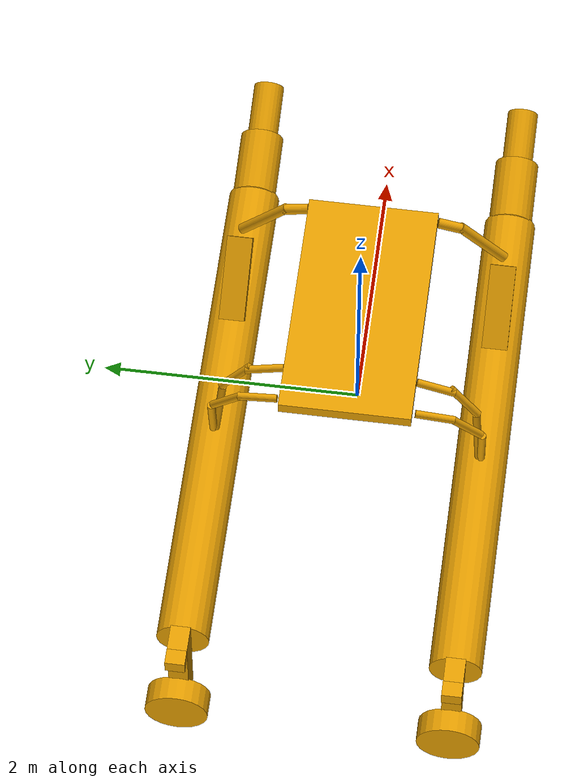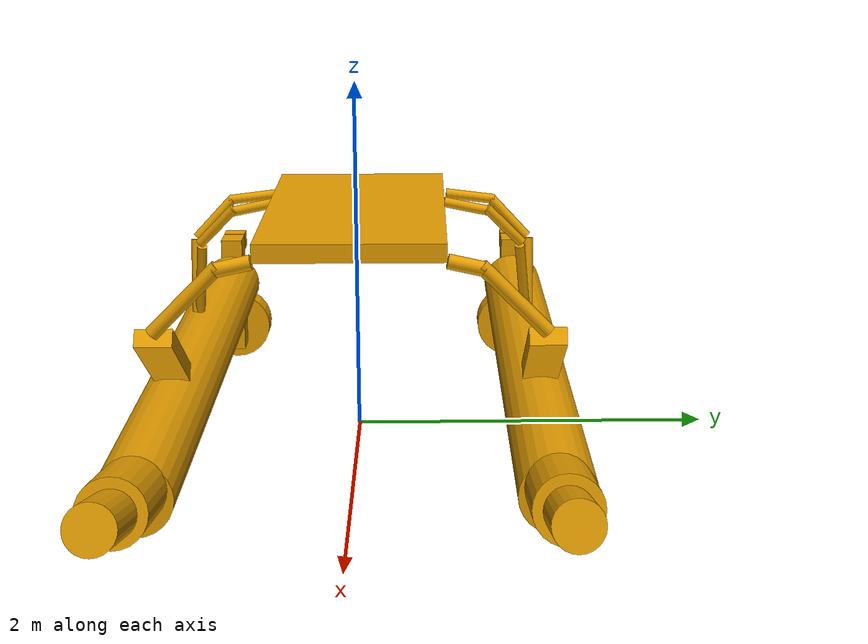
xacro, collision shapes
<?xml version="1.0"?>
<robot xmlns:xacro="http://ros.org/wiki/xacro"
       name="WAM-V">
  <!-- Defines the base vehicle -->
  <xacro:include filename="$(find wamv_description)/urdf/wamv_base.xacro" />

  <!-- Attach hydrodynamics plugin -->
  <xacro:include filename="$(find robotx_gazebo)/urdf/wamv_gazebo_dynamics_plugin.xacro" />
  <xacro:usv_dynamics_gazebo name="wamv_dynamics_plugin"/>

  <!-- Attach wind plugin -->
  <xacro:include filename="$(find robotx_gazebo)/urdf/wamv_gazebo_wind_plugin.xacro" />
  <xacro:usv_wind_gazebo name="wamv_wind_plugin"/>

  <!-- Attach thrust plugin -->
  <xacro:include filename="$(find robotx_gazebo)/urdf/wamv_gazebo_thrust_plugin.xacro" />
  <xacro:usv_thrust_gazebo name="wamv_thrust_plugin"/>

    <!-- Attach Camera plugin -->
  <xacro:include filename="$(find wamv_description)/urdf/sensor_camera.xacro" />
  <xacro:wamv_gazebo_camera name="wamv_camera1"/>
  <!-- Attach IMU plugin -->
  <xacro:include filename="$(find wamv_description)/urdf/sensor_imu.xacro" />
  <xacro:wamv_gazebo_imu name="wamv_imu"/>
  <!-- Attach GPS plugin -->
  <xacro:include filename="$(find wamv_description)/urdf/sensor_gps.xacro" />
  <xacro:wamv_gazebo_gps name="wamv_gps"/>
  <!-- Attach P3D plugin -->
  <xacro:include filename="$(find wamv_description)/urdf/sensor_p3d.xacro" />
  <xacro:wamv_gazebo_p3d name="wamv_p3d"/>
  <!-- Attach P3D plugin -->
  <xacro:include filename="$(find wamv_description)/urdf/sensor_velodyne.xacro" />
  <xacro:wamv_gazebo_p3d name="wamv_velodyne"/>

</robot>

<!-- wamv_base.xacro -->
<robot
  xmlns:xacro="http://ros.org/wiki/xacro" name="wam-v">
  <xacro:include filename="properties.urdf.xacro"/>
  <link name="base_link">
    <wind>true</wind>
    <visual>
      <geometry>
        <mesh filename="package://wamv_description/mesh/WAM-V-Base.dae"/>
      </geometry>
    </visual>
    <!-- Left float -->
    <collision name="left_float">
      <origin xyz="-0.4 1.03 0.2" rpy="0 1.57 0" />
      <geometry>
        <cylinder length="4" radius="0.2" />
      </geometry>
    </collision>
    <collision name="left_mid_float">
      <origin xyz="1.85 1.03 0.3" rpy="0 1.38 0" />
      <geometry>
        <cylinder length="0.5" radius="0.17" />
      </geometry>
    </collision>
    <collision name="left_front_float">
      <origin xyz="2.3 1.03 0.4" rpy="0 1.3 0" />
      <geometry>
        <cylinder length="0.45" radius="0.12" />
      </geometry>
    </collision>
    <!-- Left engine upper -->
    <collision name="left_engine_vertical_axis">
      <origin xyz="-2.55 1.03 0.09" rpy="0 0 0" />
      <geometry>
        <box size="0.2 0.15 0.83" />
      </geometry>
    </collision>
    <collision name="left_engine_rear_end">
      <origin xyz="-2.71 1.03 0.45" rpy="0 0 0" />
      <geometry>
        <box size="0.12 0.15 0.12" />
      </geometry>
    </collision>
    <collision name="left_propeller">
      <origin xyz="-2.73 1.03 -0.2" rpy="0 1.57 0" />
      <geometry>
        <cylinder length="0.18" radius="0.24" />
      </geometry>
    </collision>
    <!-- Right float -->
    <collision name="left_float">
      <origin xyz="-0.4 -1.03 0.2" rpy="0 1.57 0" />
      <geometry>
        <cylinder length="4" radius="0.2" />
      </geometry>
    </collision>
    <collision name="left_mid_float">
      <origin xyz="1.85 -1.03 0.3" rpy="0 1.38 0" />
      <geometry>
        <cylinder length="0.5" radius="0.17" />
      </geometry>
    </collision>
    <collision name="left_front_float">
      <origin xyz="2.3 -1.03 0.4" rpy="0 1.3 0" />
      <geometry>
        <cylinder length="0.45" radius="0.12" />
      </geometry>
    </collision>
    <!-- Right engine upper -->
    <collision name="left_engine_vertical_axis">
      <origin xyz="-2.55 -1.03 0.09" rpy="0 0 0" />
      <geometry>
        <box size="0.2 0.15 0.83" />
      </geometry>
    </collision>
    <collision name="left_engine_rear_end">
      <origin xyz="-2.71 -1.03 0.45" rpy="0 0 0" />
      <geometry>
        <box size="0.12 0.15 0.12" />
      </geometry>
    </collision>
    <collision name="left_propeller">
      <origin xyz="-2.73 -1.03 -0.2" rpy="0 1.57 0" />
      <geometry>
        <cylinder length="0.18" radius="0.24" />
      </geometry>
    </collision>
    <!-- Base -->
    <collision name="top_base">
      <origin xyz="0 -0 1.25" rpy="0 0 0" />
      <geometry>
        <box size="1.85 1 0.1" />
      </geometry>
    </collision>
    <!-- Front left beam -->
    <collision name="front_left_beam_lower">
      <origin xyz="0.9 0.85 1" rpy="0.78 0 0" />
      <geometry>
        <cylinder length="0.5" radius="0.04" />
      </geometry>
    </collision>
    <collision name="front_left_beam_upper">
      <origin xyz="0.9 0.6 1.18" rpy="1.35 0 0" />
      <geometry>
        <cylinder length="0.2" radius="0.04" />
      </geometry>
    </collision>
    <!-- Front right beam -->
    <collision name="front_right_beam_lower">
      <origin xyz="0.9 -0.85 1" rpy="-0.78 0 0" />
      <geometry>
        <cylinder length="0.5" radius="0.04" />
      </geometry>
    </collision>
    <collision name="front_right_beam_upper">
      <origin xyz="0.9 -0.6 1.18" rpy="-1.35 0 0" />
      <geometry>
        <cylinder length="0.2" radius="0.04" />
      </geometry>
    </collision>
    <!-- Mid left beam -->
    <collision name="mid_left_beam_lower">
      <origin xyz="-0.65 0.99 0.7" rpy="0.1 0.25 0" />
      <geometry>
        <cylinder length="0.45" radius="0.03" />
      </geometry>
    </collision>
    <collision name="mid_left_beam_medium">
      <origin xyz="-0.57 0.87 1.05" rpy="0.75 0.25 0" />
      <geometry>
        <cylinder length="0.32" radius="0.03" />
      </geometry>
    </collision>
    <collision name="mid_left_beam_upper">
      <origin xyz="-0.55 0.65 1.17" rpy="1.35 0.25 0" />
      <geometry>
        <cylinder length="0.3" radius="0.03" />
      </geometry>
    </collision>
    <!-- Mid right beam -->
    <collision name="mid_right_beam_lower">
      <origin xyz="-0.65 -0.99 0.7" rpy="-0.1 0.25 0" />
      <geometry>
        <cylinder length="0.45" radius="0.03" />
      </geometry>
    </collision>
    <collision name="mid_right_beam_medium">
      <origin xyz="-0.57 -0.87 1.05" rpy="-0.75 0.25 0" />
      <geometry>
        <cylinder length="0.32" radius="0.03" />
      </geometry>
    </collision>
    <collision name="mid_right_beam_upper">
      <origin xyz="-0.55 -0.65 1.17" rpy="-1.35 0.25 0" />
      <geometry>
        <cylinder length="0.3" radius="0.03" />
      </geometry>
    </collision>
    <!-- Rear left beam -->
    <collision name="rear_left_beam_lower">
      <origin xyz="-0.74 1.03 0.7" rpy="0 -0.15 0" />
      <geometry>
        <cylinder length="0.45" radius="0.03" />
      </geometry>
    </collision>
    <collision name="rear_left_beam_medium">
      <origin xyz="-0.79 0.91 1.05" rpy="0.75 -0.15 0" />
      <geometry>
        <cylinder length="0.32" radius="0.03" />
      </geometry>
    </collision>
    <collision name="rear_left_beam_upper">
      <origin xyz="-0.81 0.67 1.18" rpy="1.45 -0.15 0" />
      <geometry>
        <cylinder length="0.3" radius="0.03" />
      </geometry>
    </collision>
    <!-- Rear right beam -->
    <collision name="rear_right_beam_lower">
      <origin xyz="-0.74 -1.03 0.7" rpy="0 -0.15 0" />
      <geometry>
        <cylinder length="0.45" radius="0.03" />
      </geometry>
    </collision>
    <collision name="rear_right_beam_medium">
      <origin xyz="-0.79 -0.91 1.05" rpy="-0.75 -0.15 0" />
      <geometry>
        <cylinder length="0.32" radius="0.03" />
      </geometry>
    </collision>
    <collision name="rear_right_beam_upper">
      <origin xyz="-0.81 -0.67 1.18" rpy="-1.45 -0.15 0" />
      <geometry>
        <cylinder length="0.3" radius="0.03" />
      </geometry>
    </collision>
    <!-- Left joint -->
    <collision name="left_joint">
      <origin xyz="0.58 1.03 0.6" rpy="0 -0.6 0" />
      <geometry>
        <box size="0.65 0.2 0.1" />
      </geometry>
    </collision>
    <!-- Right joint -->
    <collision name="right_joint">
      <origin xyz="0.58 -1.03 0.6" rpy="0 -0.6 0" />
      <geometry>
        <box size="0.65 0.2 0.1" />
      </geometry>
    </collision>
    <inertial>
      <mass value="180.0"/>
      <!-- From von Ellenrieder, consistent with WAM-V specs-->
      <inertia ixx="120.0" ixy="0.0" ixz="0.0" iyy="393" iyz="0.0" izz="446.0"/>
    </inertial>
  </link>
  <joint name="base_link_joint" type="fixed">
    <origin xyz="0 0 0"/>
    <parent link="base_footprint"/>
    <child link="base_link"/>
  </joint>
  <link name="base_footprint"/>
  <link name="front_camera_link"/>
  <joint name="front_camera_joint" type="fixed">
    <origin xyz="0.8 0 1.5"/>
    <parent link="base_link"/>
    <child link="front_camera_link"/>
  </joint>
  <link name="left_camera_link"/>
  <joint name="left_camera_joint" type="fixed">
    <origin xyz="0 0.5 0" rpy="0 0 ${pi/2}"/>
    <parent link="base_link"/>
    <child link="left_camera_link"/>
  </joint>
  <link name="right_camera_link"/>
  <joint name="right_camera_joint" type="fixed">
    <origin xyz="0 -0.5 0" rpy="0 0 ${-pi/2}"/>
    <parent link="base_link"/>
    <child link="right_camera_link"/>
  </joint>
  <link name="rear_camera_link"/>
  <joint name="rear_camera_joint" type="fixed">
    <origin xyz="-0.5 0 0" rpy="0 0 ${pi}"/>
    <parent link="base_link"/>
    <child link="rear_camera_link"/>
  </joint>
  <link name="scan"/>
  <joint name="scan_joint" type="fixed">
    <origin xyz="1.5 0 -1" rpy="0 0 0"/>
    <parent link="base_link"/>
    <child link="scan"/>
  </joint>
  <link name="gps"/>
  <joint name="gps_joint" type="fixed">
    <origin xyz="0 0 1.5"/>
    <parent link="base_link"/>
    <child link="gps"/>
  </joint>
</robot>
